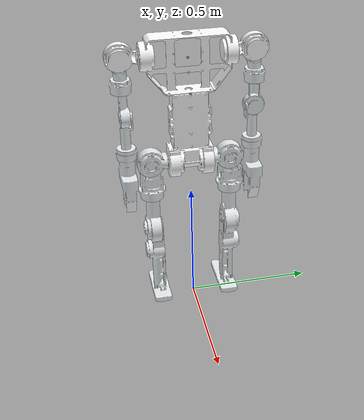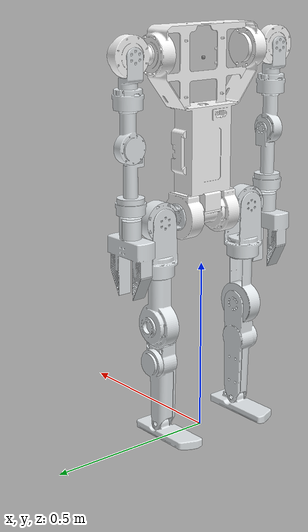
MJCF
<mujoco model="k-bot_sim">
  <default>
    <default class="robot">
      <position inheritrange="1" />
      <default class="motor_00">
        <joint armature="0.0005" frictionloss="0.1" actuatorfrcrange="-14.0 14.0" />
        <position kp="20.0" dampratio="1.0" forcelimited="true" forcerange="-14.0 14.0" />
      </default>
      <default class="motor_02">
        <joint armature="0.002" frictionloss="0.1" actuatorfrcrange="-17.0 17.0" />
        <position kp="20.0" dampratio="1.0" forcelimited="true" forcerange="-17.0 17.0" />
      </default>
      <default class="motor_03">
        <joint armature="0.005" frictionloss="0.3" actuatorfrcrange="-60.0 60.0" />
        <position kp="50.0" dampratio="1.0" forcelimited="true" forcerange="-60.0 60.0" />
      </default>
      <default class="motor_04">
        <joint armature="0.007" frictionloss="0.1" actuatorfrcrange="-120.0 120.0" />
        <position kp="100.0" dampratio="1.0" forcelimited="true" forcerange="-120.0 120.0" />
      </default>
      <default class="visual">
        <geom material="visualgeom" contype="0" conaffinity="0" group="2" />
      </default>
      <default class="collision">
        <geom condim="6" friction="0.8 0.02 0.01" group="3" />
      </default>
    </default>
  </default>

  <compiler angle="radian" />

  <asset>
    <material name="body1-part_material" rgba="1 1 1 1" />
    <material name="imu_material" rgba="0.615686 0.811765 0.929412 1" />
    <material name="arm1_top_material" rgba="0.898039 0.917647 0.929412 1" />
    <material name="default_material" rgba="0.7 0.7 0.7 1" />
    <mesh name="body1-part.collision.stl" file="meshes/body1-part.collision.stl" />
    <mesh name="body1-part.stl" file="meshes/body1-part.stl" />
    <mesh name="imu.stl" file="meshes/imu.stl" />
    <mesh name="shoulder.collision.stl" file="meshes/shoulder.collision.stl" />
    <mesh name="shoulder.stl" file="meshes/shoulder.stl" />
    <mesh name="arm1_top.stl" file="meshes/arm1_top.stl" />
    <mesh name="arm2_shell.collision.stl" file="meshes/arm2_shell.collision.stl" />
    <mesh name="arm2_shell.stl" file="meshes/arm2_shell.stl" />
    <mesh name="arm3_shell.stl" file="meshes/arm3_shell.stl" />
    <mesh name="hand_shell.collision.stl" file="meshes/hand_shell.collision.stl" />
    <mesh name="hand_shell.stl" file="meshes/hand_shell.stl" />
    <mesh name="shoulder_2.collision.stl" file="meshes/shoulder_2.collision.stl" />
    <mesh name="shoulder_2.stl" file="meshes/shoulder_2.stl" />
    <mesh name="arm1_top_2.stl" file="meshes/arm1_top_2.stl" />
    <mesh name="arm2_shell_2.collision.stl" file="meshes/arm2_shell_2.collision.stl" />
    <mesh name="arm2_shell_2.stl" file="meshes/arm2_shell_2.stl" />
    <mesh name="arm3_shell2.stl" file="meshes/arm3_shell2.stl" />
    <mesh name="hand_shell_2.collision.stl" file="meshes/hand_shell_2.collision.stl" />
    <mesh name="hand_shell_2.stl" file="meshes/hand_shell_2.stl" />
    <mesh name="leg0_shell.collision.stl" file="meshes/leg0_shell.collision.stl" />
    <mesh name="leg0_shell.stl" file="meshes/leg0_shell.stl" />
    <mesh name="leg1_shell.stl" file="meshes/leg1_shell.stl" />
    <mesh name="leg2_shell.stl" file="meshes/leg2_shell.stl" />
    <mesh name="leg3_shell1.collision.stl" file="meshes/leg3_shell1.collision.stl" />
    <mesh name="leg3_shell1.stl" file="meshes/leg3_shell1.stl" />
    <mesh name="foot1.collision.stl" file="meshes/foot1.collision.stl" />
    <mesh name="foot1.stl" file="meshes/foot1.stl" />
    <mesh name="leg0_shell_2.collision.stl" file="meshes/leg0_shell_2.collision.stl" />
    <mesh name="leg0_shell_2.stl" file="meshes/leg0_shell_2.stl" />
    <mesh name="leg1_shell3.stl" file="meshes/leg1_shell3.stl" />
    <mesh name="leg2_shell_2.stl" file="meshes/leg2_shell_2.stl" />
    <mesh name="leg3_shell11.collision.stl" file="meshes/leg3_shell11.collision.stl" />
    <mesh name="leg3_shell11.stl" file="meshes/leg3_shell11.stl" />
    <mesh name="foot3.collision.stl" file="meshes/foot3.collision.stl" />
    <mesh name="foot3.stl" file="meshes/foot3.stl" />
  </asset>

  <worldbody>
    <body name="body1-part" pos="0.00000000 0.00000000 1.08006263" childclass="robot">
      <freejoint name="floating_base" />
      <geom name="body1-part_collision" quat="0.7073882691671998 0.706825181105366 0.0 0.0" type="mesh" mesh="body1-part.collision.stl" class="collision" />
      <geom name="body1-part_visual" quat="0.7073882691671998 0.706825181105366 0.0 0.0" material="body1-part_material" type="mesh" mesh="body1-part.stl" class="visual" />
      <body name="shoulder" pos="0.000002 -0.191000 0.019999" quat="0.0005633121735972125 0.0005628637715330792 -0.7068249569936026 -0.707388044876899">
        <joint name="left_shoulder_pitch_03" type="hinge" class="motor_03" range="0 3.141593" axis="0 0 1" />
        <inertial pos="-0.002144 0.000055 -0.066483" mass="1.107356" diaginertia="0.001481 0.001039 0.000986" />
        <geom name="shoulder_collision" type="mesh" mesh="shoulder.collision.stl" class="collision" />
        <geom name="shoulder_visual" material="body1-part_material" type="mesh" mesh="shoulder.stl" class="visual" />
        <body name="arm1_top" pos="0.023512 0.000056 -0.067500" quat="0.5000001633974483 0.4999999999999733 0.49999983660255165 0.4999999999999733">
          <joint name="left_shoulder_roll_03" type="hinge" class="motor_03" range="-3.630285 0.479966" axis="0 0 -1" />
          <inertial pos="-0.099486 -0.000001 -0.019082" mass="0.572732" diaginertia="0.000453 0.001076 0.001035" />
          <geom name="arm1_top_visual" material="arm1_top_material" type="mesh" mesh="arm1_top.stl" class="visual" />
          <body name="arm2_shell" pos="-0.140500 0 -0.023500" quat="0.5000001633974483 -0.4999999999999733 0.49999983660255165 -0.4999999999999733">
            <joint name="left_shoulder_yaw_02" type="hinge" class="motor_02" range="-1.570796 1.570796" axis="0 0 1" />
            <inertial pos="-0.006339 0 -0.090482" mass="0.510678" diaginertia="0.000675 0.000532 0.000255" />
            <geom name="arm2_shell_collision" type="mesh" mesh="arm2_shell.collision.stl" class="collision" />
            <geom name="arm2_shell_visual" material="arm1_top_material" type="mesh" mesh="arm2_shell.stl" class="visual" />
            <body name="arm3_shell" pos="-0.027000 0 -0.098000" quat="-1.2247452309842457e-07 -0.7071068967259713 1.22474483074382e-07 -0.7071066656470838">
              <joint name="left_elbow_02" type="hinge" class="motor_02" range="-2.530727 0" axis="0 0 1" />
              <inertial pos="-0.140169 0 0.019433" mass="0.578536" diaginertia="0.000428 0.001354 0.001332" />
              <geom name="arm3_shell_visual" material="arm1_top_material" type="mesh" mesh="arm3_shell.stl" class="visual" />
              <body name="hand_shell" pos="-0.182500 0 0.021500" quat="0.5000001633974483 -0.4999999999999733 0.49999983660255165 -0.4999999999999733">
                <joint name="left_wrist_02" type="hinge" class="motor_02" range="-3.141593 3.141593" axis="0 0 1" />
                <inertial pos="0.000709 0.000130 -0.074657" mass="0.793063" diaginertia="0.002034 0.002869 0.00128" />
                <geom name="hand_shell_collision" type="mesh" mesh="hand_shell.collision.stl" class="collision" />
                <geom name="hand_shell_visual" material="arm1_top_material" type="mesh" mesh="hand_shell.stl" class="visual" />
              </body>
            </body>
          </body>
        </body>
      </body>
      <body name="shoulder_2" pos="-0.000002 0.191000 0.019999" quat="0.0005633121735972125 -0.0005628637715330792 0.7068249569936026 -0.707388044876899">
        <joint name="right_shoulder_pitch_03" type="hinge" class="motor_03" range="-3.141593 0" axis="0 0 1" />
        <inertial pos="-0.002144 -0.000055 -0.066483" mass="1.107354" diaginertia="0.001481 0.001039 0.000986" />
        <geom name="shoulder_2_collision" type="mesh" mesh="shoulder_2.collision.stl" class="collision" />
        <geom name="shoulder_2_visual" material="body1-part_material" type="mesh" mesh="shoulder_2.stl" class="visual" />
        <body name="arm1_top_2" pos="0.023512 -0.000056 -0.067500" quat="0.5000001633974483 0.4999999999999733 -0.49999983660255165 -0.4999999999999733">
          <joint name="right_shoulder_roll_03" type="hinge" class="motor_03" range="-0.479966 3.630285" axis="0 0 1" />
          <inertial pos="-0.099486 -0.000001 0.018082" mass="0.572732" diaginertia="0.000453 0.001076 0.001035" />
          <geom name="arm1_top_2_visual" material="arm1_top_material" type="mesh" mesh="arm1_top_2.stl" class="visual" />
          <body name="arm2_shell_2" pos="-0.140500 0 0.022500" quat="-1.2247452309842457e-07 -0.7071068967259713 -1.22474483074382e-07 0.7071066656470838">
            <joint name="right_shoulder_yaw_02" type="hinge" class="motor_02" range="-1.570796 1.570796" axis="0 0 -1" />
            <inertial pos="0 -0.006339 0.089982" mass="0.510678" diaginertia="0.000532 0.000675 0.000255" />
            <geom name="arm2_shell_2_collision" type="mesh" mesh="arm2_shell_2.collision.stl" class="collision" />
            <geom name="arm2_shell_2_visual" material="arm1_top_material" type="mesh" mesh="arm2_shell_2.stl" class="visual" />
            <body name="arm3_shell2" pos="0 -0.027000 0.097500" quat="0.5000001633974483 -0.4999999999999733 0.4999999999999733 0.49999983660255165">
              <joint name="right_elbow_02" type="hinge" class="motor_02" range="0 2.530727" axis="0 0 1" />
              <inertial pos="-0.140169 0 0.019433" mass="0.578536" diaginertia="0.000428 0.001354 0.001332" />
              <geom name="arm3_shell2_visual" material="arm1_top_material" type="mesh" mesh="arm3_shell2.stl" class="visual" />
              <body name="hand_shell_2" pos="-0.182500 0 0.021500" quat="0.5000001633974483 0.4999999999999733 0.49999983660255165 0.4999999999999733">
                <joint name="right_wrist_02" type="hinge" class="motor_02" range="-3.141593 3.141593" axis="0 0 1" />
                <inertial pos="0.000709 0.000130 -0.074657" mass="0.793063" diaginertia="0.002034 0.002869 0.00128" />
                <geom name="hand_shell_2_collision" type="mesh" mesh="hand_shell_2.collision.stl" class="collision" />
                <geom name="hand_shell_2_visual" material="arm1_top_material" type="mesh" mesh="hand_shell_2.stl" class="visual" />
              </body>
            </body>
          </body>
        </body>
      </body>
      <body name="leg0_shell" pos="-0.000002 -0.091000 -0.430001" quat="0.0005633121735972125 0.0005628637715330792 0.7068249569936026 0.707388044876899">
        <joint name="left_hip_pitch_04" type="hinge" class="motor_04" range="-1.570796 1.570796" axis="0 0 1" />
        <inertial pos="-0.003746 0 -0.068125" mass="1.323448" diaginertia="0.001886 0.001425 0.0013" />
        <geom name="leg0_shell_collision" type="mesh" mesh="leg0_shell.collision.stl" class="collision" />
        <geom name="leg0_shell_visual" material="arm1_top_material" type="mesh" mesh="leg0_shell.stl" class="visual" />
        <body name="leg1_shell" pos="0.027500 0 -0.069500" quat="0.5000001633974483 -0.4999999999999733 -0.49999983660255165 0.4999999999999733">
          <joint name="left_hip_roll_03" type="hinge" class="motor_03" range="-3.185226 0.349066" axis="0 0 1" />
          <inertial pos="-0.112524 0.000529 0.025259" mass="1.264352" diaginertia="0.001481 0.002486 0.002413" />
          <geom name="leg1_shell_visual" material="arm1_top_material" type="mesh" mesh="leg1_shell.stl" class="visual" />
          <body name="leg2_shell" pos="-0.157500 0.000120 0.027500" quat="0.7071068967259818 0.0 0.7071066656470943 0.0">
            <joint name="left_hip_yaw_03" type="hinge" class="motor_03" range="-1.570796 1.570796" axis="0 0 1" />
            <inertial pos="0 0.000532 -0.137308" mass="1.820923" diaginertia="0.003118 0.004225 0.002064" />
            <geom name="leg2_shell_visual" material="arm1_top_material" type="mesh" mesh="leg2_shell.stl" class="visual" />
            <body name="leg3_shell1" pos="0 -0.027000 -0.142500" quat="0.7071068967259818 0.7071066656470943 0.0 0.0">
              <joint name="left_knee_04" type="hinge" class="motor_04" range="0 2.094395" axis="0 0 -1" />
              <inertial pos="0.001098 -0.131322 -0.023162" mass="1.109955" diaginertia="0.00674 0.001013 0.006746" />
              <geom name="leg3_shell1_collision" type="mesh" mesh="leg3_shell1.collision.stl" class="collision" />
              <geom name="leg3_shell1_visual" material="arm1_top_material" type="mesh" mesh="leg3_shell1.stl" class="visual" />
              <body name="foot1" pos="0 -0.300000 0.009500">
                <joint name="left_ankle_02" type="hinge" class="motor_02" range="-0.698132 0.698132" axis="0 0 -1" />
                <inertial pos="0.021350 -0.019419 -0.019276" mass="0.582091" diaginertia="0.000284 0.002188 0.002024" />
                <geom name="foot1_collision" type="mesh" mesh="foot1.collision.stl" class="collision" />
                <geom name="foot1_visual" material="arm1_top_material" type="mesh" mesh="foot1.stl" class="visual" />
              </body>
            </body>
          </body>
        </body>
      </body>
      <body name="leg0_shell_2" pos="0.000002 0.091000 -0.430001" quat="0.0005633121735972125 -0.0005628637715330792 -0.7068249569936026 0.707388044876899">
        <joint name="right_hip_pitch_04" type="hinge" class="motor_04" range="-1.570796 1.570796" axis="0 0 1" />
        <inertial pos="-0.003746 0 -0.067625" mass="1.323448" diaginertia="0.001886 0.001425 0.0013" />
        <geom name="leg0_shell_2_collision" type="mesh" mesh="leg0_shell_2.collision.stl" class="collision" />
        <geom name="leg0_shell_2_visual" material="arm1_top_material" type="mesh" mesh="leg0_shell_2.stl" class="visual" />
        <body name="leg1_shell3" pos="0.027500 0 -0.069000" quat="0.5000001633974483 0.4999999999999733 -0.49999983660255165 -0.4999999999999733">
          <joint name="right_hip_roll_03" type="hinge" class="motor_03" range="-0.349066 3.185226" axis="0 0 1" />
          <inertial pos="-0.112524 -0.000529 0.025259" mass="1.264352" diaginertia="0.001481 0.002486 0.002413" />
          <geom name="leg1_shell3_visual" material="arm1_top_material" type="mesh" mesh="leg1_shell3.stl" class="visual" />
          <body name="leg2_shell_2" pos="-0.157500 -0.000120 0.027500" quat="-1.2247452309842457e-07 -0.7071068967259713 1.22474483074382e-07 -0.7071066656470838">
            <joint name="right_hip_yaw_03" type="hinge" class="motor_03" range="-1.570796 1.570796" axis="0 0 1" />
            <inertial pos="0 0.000532 -0.137308" mass="1.820923" diaginertia="0.003118 0.004225 0.002064" />
            <geom name="leg2_shell_2_visual" material="arm1_top_material" type="mesh" mesh="leg2_shell_2.stl" class="visual" />
            <body name="leg3_shell11" pos="0 -0.027000 -0.142500" quat="0.7071068967259818 0.7071066656470943 0.0 0.0">
              <joint name="right_knee_04" type="hinge" class="motor_04" range="-2.094395 0" axis="0 0 -1" />
              <inertial pos="-0.001098 -0.131322 -0.023162" mass="1.109962" diaginertia="0.00674 0.001013 0.006746" />
              <geom name="leg3_shell11_collision" type="mesh" mesh="leg3_shell11.collision.stl" class="collision" />
              <geom name="leg3_shell11_visual" material="arm1_top_material" type="mesh" mesh="leg3_shell11.stl" class="visual" />
              <body name="foot3" pos="0 -0.300000 -0.035500" quat="3.000000781252362e-14 -1.7320510330969674e-07 0.99999999999997 -1.7320510330969674e-07">
                <joint name="right_ankle_02" type="hinge" class="motor_02" range="-0.698132 0.698132" axis="0 0 1.0" />
                <inertial pos="0.021350 -0.019419 -0.023724" mass="0.582091" diaginertia="0.000284 0.002188 0.002024" />
                <geom name="foot3_collision" type="mesh" mesh="foot3.collision.stl" class="collision" />
                <geom name="foot3_visual" material="arm1_top_material" type="mesh" mesh="foot3.stl" class="visual" />
              </body>
            </body>
          </body>
        </body>
      </body>
      <site name="body1-part_site" />
      <site name="imu" pos="0.040000 0 -0.131000" />
      <camera name="tracking_camera" mode="track" pos="0.0 -2.0 1.0" quat="0.7071 0.3827 0.0 0.0" fovy="90.0" />
    </body>
  </worldbody>

  <actuator>
    <position name="left_shoulder_pitch_03_pos" joint="left_shoulder_pitch_03" class="motor_03" />
    <position name="left_shoulder_roll_03_pos" joint="left_shoulder_roll_03" class="motor_03" />
    <position name="left_shoulder_yaw_02_pos" joint="left_shoulder_yaw_02" class="motor_02" />
    <position name="left_elbow_02_pos" joint="left_elbow_02" class="motor_02" />
    <position name="left_wrist_02_pos" joint="left_wrist_02" class="motor_02" />
    <position name="right_shoulder_pitch_03_pos" joint="right_shoulder_pitch_03" class="motor_03" />
    <position name="right_shoulder_roll_03_pos" joint="right_shoulder_roll_03" class="motor_03" />
    <position name="right_shoulder_yaw_02_pos" joint="right_shoulder_yaw_02" class="motor_02" />
    <position name="right_elbow_02_pos" joint="right_elbow_02" class="motor_02" />
    <position name="right_wrist_02_pos" joint="right_wrist_02" class="motor_02" />
    <position name="left_hip_pitch_04_pos" joint="left_hip_pitch_04" class="motor_04" />
    <position name="left_hip_roll_03_pos" joint="left_hip_roll_03" class="motor_03" />
    <position name="left_hip_yaw_03_pos" joint="left_hip_yaw_03" class="motor_03" />
    <position name="left_knee_04_pos" joint="left_knee_04" class="motor_04" />
    <position name="left_ankle_02_pos" joint="left_ankle_02" class="motor_02" />
    <position name="right_hip_pitch_04_pos" joint="right_hip_pitch_04" class="motor_04" />
    <position name="right_hip_roll_03_pos" joint="right_hip_roll_03" class="motor_03" />
    <position name="right_hip_yaw_03_pos" joint="right_hip_yaw_03" class="motor_03" />
    <position name="right_knee_04_pos" joint="right_knee_04" class="motor_04" />
    <position name="right_ankle_02_pos" joint="right_ankle_02" class="motor_02" />
  </actuator>

  <contact>
    <exclude body1="body1-part" body2="shoulder" />
    <exclude body1="body1-part" body2="shoulder_2" />
    <exclude body1="body1-part" body2="leg0_shell" />
    <exclude body1="body1-part" body2="leg0_shell_2" />
    <exclude body1="leg3_shell11" body2="foot3" />
    <exclude body1="leg3_shell1" body2="foot1" />
  </contact>

  <sensor>
    <accelerometer name="imu_acc" site="imu" noise="0.01" />
    <gyro name="imu_gyro" site="imu" noise="0.01" />
    <magnetometer name="imu_mag" site="imu" noise="0.05" />
    <framepos name="base_link_pos" objtype="site" objname="imu" />
    <framequat name="base_link_quat" objtype="site" objname="imu" />
    <framelinvel name="base_link_vel" objtype="site" objname="imu" />
    <frameangvel name="base_link_ang_vel" objtype="site" objname="imu" />
  </sensor>
</mujoco>
